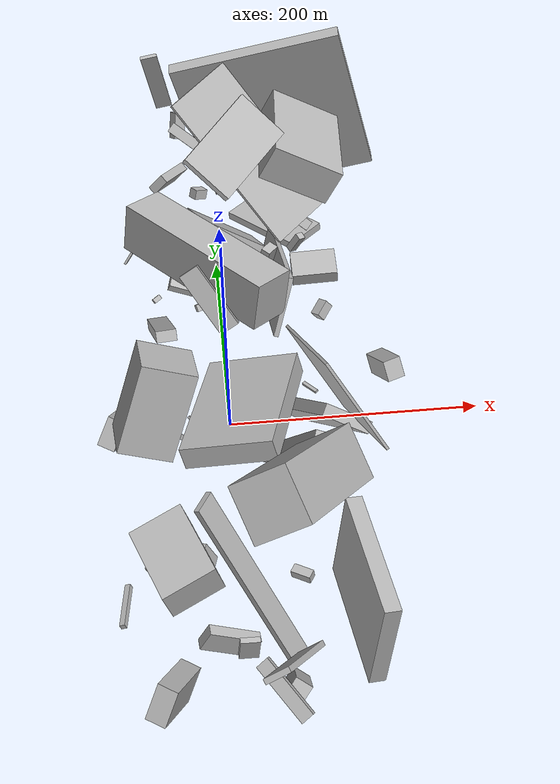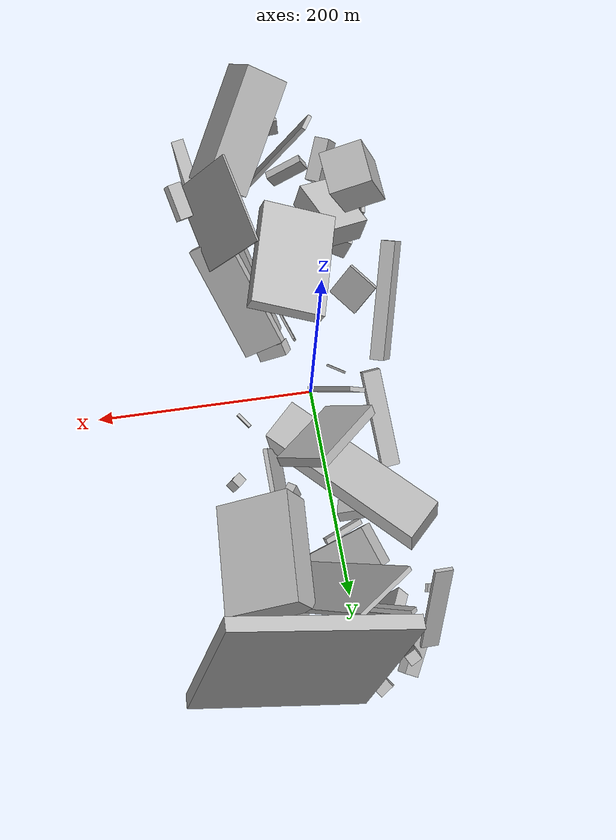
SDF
<sdf version="1.6">
 <world name="default">
  <model name="building_5">
   <static>0</static>
   <pose>-38.22261522199689 219.21160961585014 27.88847049735415 2.7129642975452604 0.5179901061412655 2.4631052561485425</pose>
   <link name="link">
    <gravity>0</gravity>
    <pose>0 0 24.5 0 0 0</pose>
    <collision name="collision"><geometry><box><size>11 22 49</size></box></geometry></collision>
    <visual name="visual">
     <cast_shadows>0</cast_shadows>
     <geometry><box><size>11 22 49</size></box></geometry>
     <material>
      <script>
       <uri>model://HANNAS_wall/materials/scripts</uri>
       <uri>model://HANNAS_wall/materials/textures</uri>
       <name>vrc/HANNAS_wall</name>
      </script>
     </material>
    </visual>
   </link>
  </model>
  <model name="building_7">
   <static>0</static>
   <pose>74.64967712619293 -153.0215495308501 40.21853076425288 1.5793829296600626 0.10665073350857512 0.13532440519797143</pose>
   <link name="link">
    <gravity>0</gravity>
    <pose>0 0 49.5 0 0 0</pose>
    <collision name="collision"><geometry><box><size>12 77 99</size></box></geometry></collision>
    <visual name="visual">
     <cast_shadows>0</cast_shadows>
     <geometry><box><size>12 77 99</size></box></geometry>
     <material>
      <script>
       <uri>model://HANNAS_wall/materials/scripts</uri>
       <uri>model://HANNAS_wall/materials/textures</uri>
       <name>vrc/HANNAS_wall</name>
      </script>
     </material>
    </visual>
   </link>
  </model>
  <model name="building_8">
   <static>0</static>
   <pose>-24.237188928174724 -75.06176642458443 92.41174616636208 -1.2998355390156124 -0.11036003465811149 -1.8368349572877083</pose>
   <link name="link">
    <gravity>0</gravity>
    <pose>0 0 34.0 0 0 0</pose>
    <collision name="collision"><geometry><box><size>100 17 68</size></box></geometry></collision>
    <visual name="visual">
     <cast_shadows>0</cast_shadows>
     <geometry><box><size>100 17 68</size></box></geometry>
     <material>
      <script>
       <uri>model://HANNAS_wall/materials/scripts</uri>
       <uri>model://HANNAS_wall/materials/textures</uri>
       <name>vrc/HANNAS_wall</name>
      </script>
     </material>
    </visual>
   </link>
  </model>
  <model name="building_9">
   <static>0</static>
   <pose>39.64252163105623 -27.66770000742519 46.26744664555902 0.7620774624724469 -0.6446618549929659 1.0246427299296357</pose>
   <link name="link">
    <gravity>0</gravity>
    <pose>0 0 55.0 0 0 0</pose>
    <collision name="collision"><geometry><box><size>9 39 110</size></box></geometry></collision>
    <visual name="visual">
     <cast_shadows>0</cast_shadows>
     <geometry><box><size>9 39 110</size></box></geometry>
     <material>
      <script>
       <uri>model://HANNAS_wall/materials/scripts</uri>
       <uri>model://HANNAS_wall/materials/textures</uri>
       <name>vrc/HANNAS_wall</name>
      </script>
     </material>
    </visual>
   </link>
  </model>
  <model name="building_13">
   <static>0</static>
   <pose>13.079674641317931 203.46861613408774 96.99087218556744 1.1341920454446301 -0.8229672286603201 2.5607372426709487</pose>
   <link name="link">
    <gravity>0</gravity>
    <pose>0 0 30.5 0 0 0</pose>
    <collision name="collision"><geometry><box><size>150 4 61</size></box></geometry></collision>
    <visual name="visual">
     <cast_shadows>0</cast_shadows>
     <geometry><box><size>150 4 61</size></box></geometry>
     <material>
      <script>
       <uri>model://HANNAS_wall/materials/scripts</uri>
       <uri>model://HANNAS_wall/materials/textures</uri>
       <name>vrc/HANNAS_wall</name>
      </script>
     </material>
    </visual>
   </link>
  </model>
  <model name="building_14">
   <static>0</static>
   <pose>84.24832538760737 158.7853391756359 20.51292014486201 -0.1887595407443927 0.04330623179839676 3.132887912742751</pose>
   <link name="link">
    <gravity>0</gravity>
    <pose>0 0 6.0 0 0 0</pose>
    <collision name="collision"><geometry><box><size>39 27 12</size></box></geometry></collision>
    <visual name="visual">
     <cast_shadows>0</cast_shadows>
     <geometry><box><size>39 27 12</size></box></geometry>
     <material>
      <script>
       <uri>model://HANNAS_wall/materials/scripts</uri>
       <uri>model://HANNAS_wall/materials/textures</uri>
       <name>vrc/HANNAS_wall</name>
      </script>
     </material>
    </visual>
   </link>
  </model>
  <model name="building_18">
   <static>0</static>
   <pose>8.267739252990763 -209.35803108081714 76.60720962808759 -1.6518469985844302 -1.1276937638027322 2.6891633907499535</pose>
   <link name="link">
    <gravity>0</gravity>
    <pose>0 0 8.5 0 0 0</pose>
    <collision name="collision"><geometry><box><size>150 4 17</size></box></geometry></collision>
    <visual name="visual">
     <cast_shadows>0</cast_shadows>
     <geometry><box><size>150 4 17</size></box></geometry>
     <material>
      <script>
       <uri>model://HANNAS_wall/materials/scripts</uri>
       <uri>model://HANNAS_wall/materials/textures</uri>
       <name>vrc/HANNAS_wall</name>
      </script>
     </material>
    </visual>
   </link>
  </model>
  <model name="building_25">
   <static>0</static>
   <pose>39.34662734941924 127.38842771322213 58.66783335978796 0.08200566092922057 -0.24210005695025313 2.485799372037489</pose>
   <link name="link">
    <gravity>0</gravity>
    <pose>0 0 9.5 0 0 0</pose>
    <collision name="collision"><geometry><box><size>8 13 19</size></box></geometry></collision>
    <visual name="visual">
     <cast_shadows>0</cast_shadows>
     <geometry><box><size>8 13 19</size></box></geometry>
     <material>
      <script>
       <uri>model://HANNAS_wall/materials/scripts</uri>
       <uri>model://HANNAS_wall/materials/textures</uri>
       <name>vrc/HANNAS_wall</name>
      </script>
     </material>
    </visual>
   </link>
  </model>
  <model name="building_28">
   <static>0</static>
   <pose>-24.104970180679537 107.04220451020208 78.22535698041028 1.726099186340496 -0.03131759160626407 2.3228075723336823</pose>
   <link name="link">
    <gravity>0</gravity>
    <pose>0 0 18.5 0 0 0</pose>
    <collision name="collision"><geometry><box><size>150 42 37</size></box></geometry></collision>
    <visual name="visual">
     <cast_shadows>0</cast_shadows>
     <geometry><box><size>150 42 37</size></box></geometry>
     <material>
      <script>
       <uri>model://HANNAS_wall/materials/scripts</uri>
       <uri>model://HANNAS_wall/materials/textures</uri>
       <name>vrc/HANNAS_wall</name>
      </script>
     </material>
    </visual>
   </link>
  </model>
  <model name="building_29">
   <static>0</static>
   <pose>-69.42836918475011 -52.817225859636466 65.09020769886938 -1.2588977951005393 0.6035472775964869 1.3226189601937945</pose>
   <link name="link">
    <gravity>0</gravity>
    <pose>0 0 6.5 0 0 0</pose>
    <collision name="collision"><geometry><box><size>109 22 13</size></box></geometry></collision>
    <visual name="visual">
     <cast_shadows>0</cast_shadows>
     <geometry><box><size>109 22 13</size></box></geometry>
     <material>
      <script>
       <uri>model://HANNAS_wall/materials/scripts</uri>
       <uri>model://HANNAS_wall/materials/textures</uri>
       <name>vrc/HANNAS_wall</name>
      </script>
     </material>
    </visual>
   </link>
  </model>
  <model name="building_30">
   <static>0</static>
   <pose>83.32996170653394 198.32071532135723 141.20286087648145 2.6658873330432473 -0.027324226033345975 -1.6343026786071377</pose>
   <link name="link">
    <gravity>0</gravity>
    <pose>0 0 16.0 0 0 0</pose>
    <collision name="collision"><geometry><box><size>90 62 32</size></box></geometry></collision>
    <visual name="visual">
     <cast_shadows>0</cast_shadows>
     <geometry><box><size>90 62 32</size></box></geometry>
     <material>
      <script>
       <uri>model://HANNAS_wall/materials/scripts</uri>
       <uri>model://HANNAS_wall/materials/textures</uri>
       <name>vrc/HANNAS_wall</name>
      </script>
     </material>
    </visual>
   </link>
  </model>
  <model name="building_31">
   <static>0</static>
   <pose>23.712993987857796 225.48053593789643 73.78644254102036 0.6964478640824776 0.6205880064474074 1.591387743899397</pose>
   <link name="link">
    <gravity>0</gravity>
    <pose>0 0 4.5 0 0 0</pose>
    <collision name="collision"><geometry><box><size>4 150 9</size></box></geometry></collision>
    <visual name="visual">
     <cast_shadows>0</cast_shadows>
     <geometry><box><size>4 150 9</size></box></geometry>
     <material>
      <script>
       <uri>model://HANNAS_wall/materials/scripts</uri>
       <uri>model://HANNAS_wall/materials/textures</uri>
       <name>vrc/HANNAS_wall</name>
      </script>
     </material>
    </visual>
   </link>
  </model>
  <model name="building_34">
   <static>0</static>
   <pose>-49.15141833828519 -169.9226055189526 57.79662663016574 2.8681894875074896 -0.057961965504641375 1.9319025093207793</pose>
   <link name="link">
    <gravity>0</gravity>
    <pose>0 0 13.0 0 0 0</pose>
    <collision name="collision"><geometry><box><size>61 41 26</size></box></geometry></collision>
    <visual name="visual">
     <cast_shadows>0</cast_shadows>
     <geometry><box><size>61 41 26</size></box></geometry>
     <material>
      <script>
       <uri>model://HANNAS_wall/materials/scripts</uri>
       <uri>model://HANNAS_wall/materials/textures</uri>
       <name>vrc/HANNAS_wall</name>
      </script>
     </material>
    </visual>
   </link>
  </model>
  <model name="building_37">
   <static>0</static>
   <pose>33.78213592871217 -109.16914585912318 35.30192318245844 -1.172118982560382 0.42329367469018214 2.5098380651380197</pose>
   <link name="link">
    <gravity>0</gravity>
    <pose>0 0 10.5 0 0 0</pose>
    <collision name="collision"><geometry><box><size>24 44 21</size></box></geometry></collision>
    <visual name="visual">
     <cast_shadows>0</cast_shadows>
     <geometry><box><size>24 44 21</size></box></geometry>
     <material>
      <script>
       <uri>model://HANNAS_wall/materials/scripts</uri>
       <uri>model://HANNAS_wall/materials/textures</uri>
       <name>vrc/HANNAS_wall</name>
      </script>
     </material>
    </visual>
   </link>
  </model>
  <model name="building_41">
   <static>0</static>
   <pose>0.546215693451849 199.4236333749245 40.03255643686731 1.111179175049241 -0.8403933101512087 0.7214751072270812</pose>
   <link name="link">
    <gravity>0</gravity>
    <pose>0 0 18.0 0 0 0</pose>
    <collision name="collision"><geometry><box><size>19 69 36</size></box></geometry></collision>
    <visual name="visual">
     <cast_shadows>0</cast_shadows>
     <geometry><box><size>19 69 36</size></box></geometry>
     <material>
      <script>
       <uri>model://HANNAS_wall/materials/scripts</uri>
       <uri>model://HANNAS_wall/materials/textures</uri>
       <name>vrc/HANNAS_wall</name>
      </script>
     </material>
    </visual>
   </link>
  </model>
  <model name="building_46">
   <static>0</static>
   <pose>104.73765831177516 -118.73236171235021 161.3383829701817 0.09613063901894432 -0.5293689854864211 -1.290899023836904</pose>
   <link name="link">
    <gravity>0</gravity>
    <pose>0 0 7.0 0 0 0</pose>
    <collision name="collision"><geometry><box><size>31 12 14</size></box></geometry></collision>
    <visual name="visual">
     <cast_shadows>0</cast_shadows>
     <geometry><box><size>31 12 14</size></box></geometry>
     <material>
      <script>
       <uri>model://HANNAS_wall/materials/scripts</uri>
       <uri>model://HANNAS_wall/materials/textures</uri>
       <name>vrc/HANNAS_wall</name>
      </script>
     </material>
    </visual>
   </link>
  </model>
  <model name="building_47">
   <static>0</static>
   <pose>-62.49550309913893 -134.81367436308233 129.8701430130713 0.2920165682109214 -0.3462352591781784 3.1368918423460634</pose>
   <link name="link">
    <gravity>0</gravity>
    <pose>0 0 32.5 0 0 0</pose>
    <collision name="collision"><geometry><box><size>38 38 65</size></box></geometry></collision>
    <visual name="visual">
     <cast_shadows>0</cast_shadows>
     <geometry><box><size>38 38 65</size></box></geometry>
     <material>
      <script>
       <uri>model://HANNAS_wall/materials/scripts</uri>
       <uri>model://HANNAS_wall/materials/textures</uri>
       <name>vrc/HANNAS_wall</name>
      </script>
     </material>
    </visual>
   </link>
  </model>
  <model name="building_48">
   <static>0</static>
   <pose>60.78758345793965 272.80892171845113 105.03418474843198 1.4515096609376705 0.23076253464599644 3.0775765544457685</pose>
   <link name="link">
    <gravity>0</gravity>
    <pose>0 0 6.0 0 0 0</pose>
    <collision name="collision"><geometry><box><size>150 150 12</size></box></geometry></collision>
    <visual name="visual">
     <cast_shadows>0</cast_shadows>
     <geometry><box><size>150 150 12</size></box></geometry>
     <material>
      <script>
       <uri>model://HANNAS_wall/materials/scripts</uri>
       <uri>model://HANNAS_wall/materials/textures</uri>
       <name>vrc/HANNAS_wall</name>
      </script>
     </material>
    </visual>
   </link>
  </model>
  <model name="building_49">
   <static>0</static>
   <pose>17.715322219001706 -39.04278381000216 23.00061728601557 -2.2847181453704177 0.5911410377605386 -2.190799577122648</pose>
   <link name="link">
    <gravity>0</gravity>
    <pose>0 0 14.0 0 0 0</pose>
    <collision name="collision"><geometry><box><size>13 12 28</size></box></geometry></collision>
    <visual name="visual">
     <cast_shadows>0</cast_shadows>
     <geometry><box><size>13 12 28</size></box></geometry>
     <material>
      <script>
       <uri>model://HANNAS_wall/materials/scripts</uri>
       <uri>model://HANNAS_wall/materials/textures</uri>
       <name>vrc/HANNAS_wall</name>
      </script>
     </material>
    </visual>
   </link>
  </model>
  <model name="building_51">
   <static>0</static>
   <pose>32.5086295257191 -259.7795285765354 27.77272644836856 -2.4842297090578582 0.6727064203651336 1.5876106021687812</pose>
   <link name="link">
    <gravity>0</gravity>
    <pose>0 0 7.5 0 0 0</pose>
    <collision name="collision"><geometry><box><size>24 13 15</size></box></geometry></collision>
    <visual name="visual">
     <cast_shadows>0</cast_shadows>
     <geometry><box><size>24 13 15</size></box></geometry>
     <material>
      <script>
       <uri>model://HANNAS_wall/materials/scripts</uri>
       <uri>model://HANNAS_wall/materials/textures</uri>
       <name>vrc/HANNAS_wall</name>
      </script>
     </material>
    </visual>
   </link>
  </model>
  <model name="building_61">
   <static>0</static>
   <pose>-48.28347375790696 -248.12711758609504 24.374153232765394 2.5692565416090494 0.1586994159268782 -0.5186882684708718</pose>
   <link name="link">
    <gravity>0</gravity>
    <pose>0 0 13.5 0 0 0</pose>
    <collision name="collision"><geometry><box><size>15 44 27</size></box></geometry></collision>
    <visual name="visual">
     <cast_shadows>0</cast_shadows>
     <geometry><box><size>15 44 27</size></box></geometry>
     <material>
      <script>
       <uri>model://HANNAS_wall/materials/scripts</uri>
       <uri>model://HANNAS_wall/materials/textures</uri>
       <name>vrc/HANNAS_wall</name>
      </script>
     </material>
    </visual>
   </link>
  </model>
  <model name="building_71">
   <static>0</static>
   <pose>-19.556851807451363 131.65576160761518 39.37348161886414 -2.6960465530352096 0.3351079501724397 -0.10879346591509531</pose>
   <link name="link">
    <gravity>0</gravity>
    <pose>0 0 5.0 0 0 0</pose>
    <collision name="collision"><geometry><box><size>42 17 10</size></box></geometry></collision>
    <visual name="visual">
     <cast_shadows>0</cast_shadows>
     <geometry><box><size>42 17 10</size></box></geometry>
     <material>
      <script>
       <uri>model://HANNAS_wall/materials/scripts</uri>
       <uri>model://HANNAS_wall/materials/textures</uri>
       <name>vrc/HANNAS_wall</name>
      </script>
     </material>
    </visual>
   </link>
  </model>
  <model name="building_73">
   <static>0</static>
   <pose>39.58397999945617 -247.65343071675431 40.6313025624252 -0.7312739593830802 0.5723590248064355 -3.1037331927724616</pose>
   <link name="link">
    <gravity>0</gravity>
    <pose>0 0 35.0 0 0 0</pose>
    <collision name="collision"><geometry><box><size>19 4 70</size></box></geometry></collision>
    <visual name="visual">
     <cast_shadows>0</cast_shadows>
     <geometry><box><size>19 4 70</size></box></geometry>
     <material>
      <script>
       <uri>model://HANNAS_wall/materials/scripts</uri>
       <uri>model://HANNAS_wall/materials/textures</uri>
       <name>vrc/HANNAS_wall</name>
      </script>
     </material>
    </visual>
   </link>
  </model>
  <model name="building_74">
   <static>0</static>
   <pose>15.602039154746159 -279.7893017868175 39.38269248179797 -0.8169383463139726 0.4214811570010539 -0.890701458568604</pose>
   <link name="link">
    <gravity>0</gravity>
    <pose>0 0 5.0 0 0 0</pose>
    <collision name="collision"><geometry><box><size>46 4 10</size></box></geometry></collision>
    <visual name="visual">
     <cast_shadows>0</cast_shadows>
     <geometry><box><size>46 4 10</size></box></geometry>
     <material>
      <script>
       <uri>model://HANNAS_wall/materials/scripts</uri>
       <uri>model://HANNAS_wall/materials/textures</uri>
       <name>vrc/HANNAS_wall</name>
      </script>
     </material>
    </visual>
   </link>
  </model>
  <model name="building_77">
   <static>0</static>
   <pose>-38.3690428392036 -60.859144791300274 54.980088592017 -0.6266451966717013 0.21612828148902385 2.272688400785173</pose>
   <link name="link">
    <gravity>0</gravity>
    <pose>0 0 17.0 0 0 0</pose>
    <collision name="collision"><geometry><box><size>31 4 34</size></box></geometry></collision>
    <visual name="visual">
     <cast_shadows>0</cast_shadows>
     <geometry><box><size>31 4 34</size></box></geometry>
     <material>
      <script>
       <uri>model://HANNAS_wall/materials/scripts</uri>
       <uri>model://HANNAS_wall/materials/textures</uri>
       <name>vrc/HANNAS_wall</name>
      </script>
     </material>
    </visual>
   </link>
  </model>
  <model name="building_80">
   <static>0</static>
   <pose>22.534974746116823 -195.2651762910422 138.40204102924 -0.8831727155165471 -0.5234648425803112 -2.118915950819357</pose>
   <link name="link">
    <gravity>0</gravity>
    <pose>0 0 21.0 0 0 0</pose>
    <collision name="collision"><geometry><box><size>109 40 42</size></box></geometry></collision>
    <visual name="visual">
     <cast_shadows>0</cast_shadows>
     <geometry><box><size>109 40 42</size></box></geometry>
     <material>
      <script>
       <uri>model://HANNAS_wall/materials/scripts</uri>
       <uri>model://HANNAS_wall/materials/textures</uri>
       <name>vrc/HANNAS_wall</name>
      </script>
     </material>
    </visual>
   </link>
  </model>
  <model name="building_83">
   <static>0</static>
   <pose>50.55867820321621 76.02420046950695 53.857599683536414 -2.4799238818180043 -1.1012811842455545 0.8920978355793899</pose>
   <link name="link">
    <gravity>0</gravity>
    <pose>0 0 75.0 0 0 0</pose>
    <collision name="collision"><geometry><box><size>52 4 150</size></box></geometry></collision>
    <visual name="visual">
     <cast_shadows>0</cast_shadows>
     <geometry><box><size>52 4 150</size></box></geometry>
     <material>
      <script>
       <uri>model://HANNAS_wall/materials/scripts</uri>
       <uri>model://HANNAS_wall/materials/textures</uri>
       <name>vrc/HANNAS_wall</name>
      </script>
     </material>
    </visual>
   </link>
  </model>
  <model name="building_85">
   <static>0</static>
   <pose>37.305339291333205 -91.17926834825556 68.9902429961727 2.060385125189459 -0.5532532630784246 1.2343341586423684</pose>
   <link name="link">
    <gravity>0</gravity>
    <pose>0 0 10.5 0 0 0</pose>
    <collision name="collision"><geometry><box><size>11 118 21</size></box></geometry></collision>
    <visual name="visual">
     <cast_shadows>0</cast_shadows>
     <geometry><box><size>11 118 21</size></box></geometry>
     <material>
      <script>
       <uri>model://HANNAS_wall/materials/scripts</uri>
       <uri>model://HANNAS_wall/materials/textures</uri>
       <name>vrc/HANNAS_wall</name>
      </script>
     </material>
    </visual>
   </link>
  </model>
  <model name="building_92">
   <static>0</static>
   <pose>-84.7519317173568 -190.31512181083804 26.839875392357012 1.1872114205500972 -0.013940210438016945 1.4436514103852753</pose>
   <link name="link">
    <gravity>0</gravity>
    <pose>0 0 2.0 0 0 0</pose>
    <collision name="collision"><geometry><box><size>34 4 4</size></box></geometry></collision>
    <visual name="visual">
     <cast_shadows>0</cast_shadows>
     <geometry><box><size>34 4 4</size></box></geometry>
     <material>
      <script>
       <uri>model://HANNAS_wall/materials/scripts</uri>
       <uri>model://HANNAS_wall/materials/textures</uri>
       <name>vrc/HANNAS_wall</name>
      </script>
     </material>
    </visual>
   </link>
  </model>
  <model name="building_94">
   <static>0</static>
   <pose>69.25902749548742 146.73429051758615 61.19245293957468 -0.5828181940913172 -1.0752570486930906 -0.40183560096018106</pose>
   <link name="link">
    <gravity>0</gravity>
    <pose>0 0 3.0 0 0 0</pose>
    <collision name="collision"><geometry><box><size>18 7 6</size></box></geometry></collision>
    <visual name="visual">
     <cast_shadows>0</cast_shadows>
     <geometry><box><size>18 7 6</size></box></geometry>
     <material>
      <script>
       <uri>model://HANNAS_wall/materials/scripts</uri>
       <uri>model://HANNAS_wall/materials/textures</uri>
       <name>vrc/HANNAS_wall</name>
      </script>
     </material>
    </visual>
   </link>
  </model>
  <model name="building_95">
   <static>0</static>
   <pose>4.669016549347145 -261.3604078686604 67.29429870565133 -1.4887390582920597 -0.09484310658914151 1.5978854686871653</pose>
   <link name="link">
    <gravity>0</gravity>
    <pose>0 0 6.5 0 0 0</pose>
    <collision name="collision"><geometry><box><size>4 19 13</size></box></geometry></collision>
    <visual name="visual">
     <cast_shadows>0</cast_shadows>
     <geometry><box><size>4 19 13</size></box></geometry>
     <material>
      <script>
       <uri>model://HANNAS_wall/materials/scripts</uri>
       <uri>model://HANNAS_wall/materials/textures</uri>
       <name>vrc/HANNAS_wall</name>
      </script>
     </material>
    </visual>
   </link>
  </model>
  <model name="building_98">
   <static>0</static>
   <pose>-45.03506555184545 24.987848213008252 78.5670127516589 3.127246372593063 0.964031831628342 -1.4660077190689438</pose>
   <link name="link">
    <gravity>0</gravity>
    <pose>0 0 43.5 0 0 0</pose>
    <collision name="collision"><geometry><box><size>9 16 87</size></box></geometry></collision>
    <visual name="visual">
     <cast_shadows>0</cast_shadows>
     <geometry><box><size>9 16 87</size></box></geometry>
     <material>
      <script>
       <uri>model://HANNAS_wall/materials/scripts</uri>
       <uri>model://HANNAS_wall/materials/textures</uri>
       <name>vrc/HANNAS_wall</name>
      </script>
     </material>
    </visual>
   </link>
  </model>
  <model name="building_103">
   <static>0</static>
   <pose>-41.26158111207023 267.0829696574573 156.15512778303693 -2.794209289878136 -1.1106607824571462 -1.8283715284317545</pose>
   <link name="link">
    <gravity>0</gravity>
    <pose>0 0 1.5 0 0 0</pose>
    <collision name="collision"><geometry><box><size>80 14 3</size></box></geometry></collision>
    <visual name="visual">
     <cast_shadows>0</cast_shadows>
     <geometry><box><size>80 14 3</size></box></geometry>
     <material>
      <script>
       <uri>model://HANNAS_wall/materials/scripts</uri>
       <uri>model://HANNAS_wall/materials/textures</uri>
       <name>vrc/HANNAS_wall</name>
      </script>
     </material>
    </visual>
   </link>
  </model>
  <model name="building_110">
   <static>0</static>
   <pose>-28.224399782288984 286.40049882165454 96.27018252117549 1.2135347001522203 0.30571173008125907 0.4351516475786756</pose>
   <link name="link">
    <gravity>0</gravity>
    <pose>0 0 4.5 0 0 0</pose>
    <collision name="collision"><geometry><box><size>10 23 9</size></box></geometry></collision>
    <visual name="visual">
     <cast_shadows>0</cast_shadows>
     <geometry><box><size>10 23 9</size></box></geometry>
     <material>
      <script>
       <uri>model://HANNAS_wall/materials/scripts</uri>
       <uri>model://HANNAS_wall/materials/textures</uri>
       <name>vrc/HANNAS_wall</name>
      </script>
     </material>
    </visual>
   </link>
  </model>
  <model name="building_111">
   <static>0</static>
   <pose>-26.3789018725123 -14.445481986892794 14.669006633380139 2.170984020142988 -0.4926976102971972 2.270103543031899</pose>
   <link name="link">
    <gravity>0</gravity>
    <pose>0 0 1.0 0 0 0</pose>
    <collision name="collision"><geometry><box><size>23 2 2</size></box></geometry></collision>
    <visual name="visual">
     <cast_shadows>0</cast_shadows>
     <geometry><box><size>23 2 2</size></box></geometry>
     <material>
      <script>
       <uri>model://HANNAS_wall/materials/scripts</uri>
       <uri>model://HANNAS_wall/materials/textures</uri>
       <name>vrc/HANNAS_wall</name>
      </script>
     </material>
    </visual>
   </link>
  </model>
  <model name="building_113">
   <static>0</static>
   <pose>-40.14306887406009 269.40372792070866 53.605987459211896 2.677568015687097 -0.8515084123569633 -0.13066562723261924</pose>
   <link name="link">
    <gravity>0</gravity>
    <pose>0 0 4.0 0 0 0</pose>
    <collision name="collision"><geometry><box><size>18 42 8</size></box></geometry></collision>
    <visual name="visual">
     <cast_shadows>0</cast_shadows>
     <geometry><box><size>18 42 8</size></box></geometry>
     <material>
      <script>
       <uri>model://HANNAS_wall/materials/scripts</uri>
       <uri>model://HANNAS_wall/materials/textures</uri>
       <name>vrc/HANNAS_wall</name>
      </script>
     </material>
    </visual>
   </link>
  </model>
  <model name="building_116">
   <static>0</static>
   <pose>81.2999347169704 97.57237793372457 31.28680473183408 -1.2088334523871815 0.512860181993096 -2.275488571233492</pose>
   <link name="link">
    <gravity>0</gravity>
    <pose>0 0 4.5 0 0 0</pose>
    <collision name="collision"><geometry><box><size>14 9 9</size></box></geometry></collision>
    <visual name="visual">
     <cast_shadows>0</cast_shadows>
     <geometry><box><size>14 9 9</size></box></geometry>
     <material>
      <script>
       <uri>model://HANNAS_wall/materials/scripts</uri>
       <uri>model://HANNAS_wall/materials/textures</uri>
       <name>vrc/HANNAS_wall</name>
      </script>
     </material>
    </visual>
   </link>
  </model>
  <model name="building_119">
   <static>0</static>
   <pose>-53.62107042501974 122.51294660636842 31.915289445538992 0.3593045002513729 0.7477183784894372 -0.7344704300267343</pose>
   <link name="link">
    <gravity>0</gravity>
    <pose>0 0 2.0 0 0 0</pose>
    <collision name="collision"><geometry><box><size>4 7 4</size></box></geometry></collision>
    <visual name="visual">
     <cast_shadows>0</cast_shadows>
     <geometry><box><size>4 7 4</size></box></geometry>
     <material>
      <script>
       <uri>model://HANNAS_wall/materials/scripts</uri>
       <uri>model://HANNAS_wall/materials/textures</uri>
       <name>vrc/HANNAS_wall</name>
      </script>
     </material>
    </visual>
   </link>
  </model>
  <model name="building_120">
   <static>0</static>
   <pose>-13.971058675109802 -227.14179963563828 34.435928046698315 1.593998516861619 0.49183941405273246 0.09834087756919668</pose>
   <link name="link">
    <gravity>0</gravity>
    <pose>0 0 4.0 0 0 0</pose>
    <collision name="collision"><geometry><box><size>38 17 8</size></box></geometry></collision>
    <visual name="visual">
     <cast_shadows>0</cast_shadows>
     <geometry><box><size>38 17 8</size></box></geometry>
     <material>
      <script>
       <uri>model://HANNAS_wall/materials/scripts</uri>
       <uri>model://HANNAS_wall/materials/textures</uri>
       <name>vrc/HANNAS_wall</name>
      </script>
     </material>
    </visual>
   </link>
  </model>
  <model name="building_121">
   <static>0</static>
   <pose>-40.55800020936938 -144.45400219968116 26.611293948955222 -1.8298064365027606 0.28633243092898036 2.7524744077424455</pose>
   <link name="link">
    <gravity>0</gravity>
    <pose>0 0 10.5 0 0 0</pose>
    <collision name="collision"><geometry><box><size>43 21 21</size></box></geometry></collision>
    <visual name="visual">
     <cast_shadows>0</cast_shadows>
     <geometry><box><size>43 21 21</size></box></geometry>
     <material>
      <script>
       <uri>model://HANNAS_wall/materials/scripts</uri>
       <uri>model://HANNAS_wall/materials/textures</uri>
       <name>vrc/HANNAS_wall</name>
      </script>
     </material>
    </visual>
   </link>
  </model>
  <model name="building_123">
   <static>0</static>
   <pose>90.86931817048827 -120.59296456217632 113.12209709354592 0.4192613551230263 0.4063776057885111 -2.702893673560912</pose>
   <link name="link">
    <gravity>0</gravity>
    <pose>0 0 40.0 0 0 0</pose>
    <collision name="collision"><geometry><box><size>2 80 80</size></box></geometry></collision>
    <visual name="visual">
     <cast_shadows>0</cast_shadows>
     <geometry><box><size>2 80 80</size></box></geometry>
     <material>
      <script>
       <uri>model://HANNAS_wall/materials/scripts</uri>
       <uri>model://HANNAS_wall/materials/textures</uri>
       <name>vrc/HANNAS_wall</name>
      </script>
     </material>
    </visual>
   </link>
  </model>
  <model name="building_127">
   <static>0</static>
   <pose>-4.557198128324989 145.1665105985075 5.9430039065794364 0.07315150585808511 0.9199627410733657 -1.0877293851325682</pose>
   <link name="link">
    <gravity>0</gravity>
    <pose>0 0 2.5 0 0 0</pose>
    <collision name="collision"><geometry><box><size>6 37 5</size></box></geometry></collision>
    <visual name="visual">
     <cast_shadows>0</cast_shadows>
     <geometry><box><size>6 37 5</size></box></geometry>
     <material>
      <script>
       <uri>model://HANNAS_wall/materials/scripts</uri>
       <uri>model://HANNAS_wall/materials/textures</uri>
       <name>vrc/HANNAS_wall</name>
      </script>
     </material>
    </visual>
   </link>
  </model>
  <model name="building_129">
   <static>0</static>
   <pose>4.859596125046397 34.01186515770605 73.42604859112046 0.5149445353826869 0.5858598668280931 -3.047441748805744</pose>
   <link name="link">
    <gravity>0</gravity>
    <pose>0 0 28.0 0 0 0</pose>
    <collision name="collision"><geometry><box><size>17 4 56</size></box></geometry></collision>
    <visual name="visual">
     <cast_shadows>0</cast_shadows>
     <geometry><box><size>17 4 56</size></box></geometry>
     <material>
      <script>
       <uri>model://HANNAS_wall/materials/scripts</uri>
       <uri>model://HANNAS_wall/materials/textures</uri>
       <name>vrc/HANNAS_wall</name>
      </script>
     </material>
    </visual>
   </link>
  </model>
  <model name="building_133">
   <static>0</static>
   <pose>18.94803539563833 -41.61605194663195 59.58974682838251 -1.148072828726008 -0.24444787098215817 1.7880030935300302</pose>
   <link name="link">
    <gravity>0</gravity>
    <pose>0 0 1.0 0 0 0</pose>
    <collision name="collision"><geometry><box><size>41 4 2</size></box></geometry></collision>
    <visual name="visual">
     <cast_shadows>0</cast_shadows>
     <geometry><box><size>41 4 2</size></box></geometry>
     <material>
      <script>
       <uri>model://HANNAS_wall/materials/scripts</uri>
       <uri>model://HANNAS_wall/materials/textures</uri>
       <name>vrc/HANNAS_wall</name>
      </script>
     </material>
    </visual>
   </link>
  </model>
  <model name="building_134">
   <static>0</static>
   <pose>33.56252664767842 117.69530852212203 166.6505867102959 0.5028535304968691 -0.8086955870121684 -1.1553233319200236</pose>
   <link name="link">
    <gravity>0</gravity>
    <pose>0 0 22.5 0 0 0</pose>
    <collision name="collision"><geometry><box><size>8 73 45</size></box></geometry></collision>
    <visual name="visual">
     <cast_shadows>0</cast_shadows>
     <geometry><box><size>8 73 45</size></box></geometry>
     <material>
      <script>
       <uri>model://HANNAS_wall/materials/scripts</uri>
       <uri>model://HANNAS_wall/materials/textures</uri>
       <name>vrc/HANNAS_wall</name>
      </script>
     </material>
    </visual>
   </link>
  </model>
  <model name="building_136">
   <static>0</static>
   <pose>42.54903009938401 233.2352765327512 10.134442504246003 -1.2052208155141768 1.492975584244084 -0.4691011183477383</pose>
   <link name="link">
    <gravity>0</gravity>
    <pose>0 0 19.0 0 0 0</pose>
    <collision name="collision"><geometry><box><size>7 80 38</size></box></geometry></collision>
    <visual name="visual">
     <cast_shadows>0</cast_shadows>
     <geometry><box><size>7 80 38</size></box></geometry>
     <material>
      <script>
       <uri>model://HANNAS_wall/materials/scripts</uri>
       <uri>model://HANNAS_wall/materials/textures</uri>
       <name>vrc/HANNAS_wall</name>
      </script>
     </material>
    </visual>
   </link>
  </model>
  <model name="building_139">
   <static>0</static>
   <pose>62.341021171386245 31.690724696354813 9.631585752533844 -0.9345609218302283 -1.3869418875699917 -3.136570063613367</pose>
   <link name="link">
    <gravity>0</gravity>
    <pose>0 0 8.0 0 0 0</pose>
    <collision name="collision"><geometry><box><size>2 3 16</size></box></geometry></collision>
    <visual name="visual">
     <cast_shadows>0</cast_shadows>
     <geometry><box><size>2 3 16</size></box></geometry>
     <material>
      <script>
       <uri>model://HANNAS_wall/materials/scripts</uri>
       <uri>model://HANNAS_wall/materials/textures</uri>
       <name>vrc/HANNAS_wall</name>
      </script>
     </material>
    </visual>
   </link>
  </model>
  <model name="building_142">
   <static>0</static>
   <pose>34.74556718585191 -168.358842137041 23.348532742897987 1.5137686987331747 -0.13206925954429294 1.0121653422715176</pose>
   <link name="link">
    <gravity>0</gravity>
    <pose>0 0 7.5 0 0 0</pose>
    <collision name="collision"><geometry><box><size>7 7 15</size></box></geometry></collision>
    <visual name="visual">
     <cast_shadows>0</cast_shadows>
     <geometry><box><size>7 7 15</size></box></geometry>
     <material>
      <script>
       <uri>model://HANNAS_wall/materials/scripts</uri>
       <uri>model://HANNAS_wall/materials/textures</uri>
       <name>vrc/HANNAS_wall</name>
      </script>
     </material>
    </visual>
   </link>
  </model>
  <model name="building_148">
   <static>0</static>
   <pose>-16.35492443518098 283.23013717764263 20.04512331547644 -1.9482319585819734 -0.1271752669844296 -0.9515758787932121</pose>
   <link name="link">
    <gravity>0</gravity>
    <pose>0 0 6.5 0 0 0</pose>
    <collision name="collision"><geometry><box><size>9 9 13</size></box></geometry></collision>
    <visual name="visual">
     <cast_shadows>0</cast_shadows>
     <geometry><box><size>9 9 13</size></box></geometry>
     <material>
      <script>
       <uri>model://HANNAS_wall/materials/scripts</uri>
       <uri>model://HANNAS_wall/materials/textures</uri>
       <name>vrc/HANNAS_wall</name>
      </script>
     </material>
    </visual>
   </link>
  </model>
  <model name="building_149">
   <static>0</static>
   <pose>-71.54805633567008 210.30854603135958 20.208555026697013 -2.451763491175629 0.9498705010719548 -2.817899490900951</pose>
   <link name="link">
    <gravity>0</gravity>
    <pose>0 0 1.0 0 0 0</pose>
    <collision name="collision"><geometry><box><size>37 7 2</size></box></geometry></collision>
    <visual name="visual">
     <cast_shadows>0</cast_shadows>
     <geometry><box><size>37 7 2</size></box></geometry>
     <material>
      <script>
       <uri>model://HANNAS_wall/materials/scripts</uri>
       <uri>model://HANNAS_wall/materials/textures</uri>
       <name>vrc/HANNAS_wall</name>
      </script>
     </material>
    </visual>
   </link>
  </model>
 </world>
</sdf>
